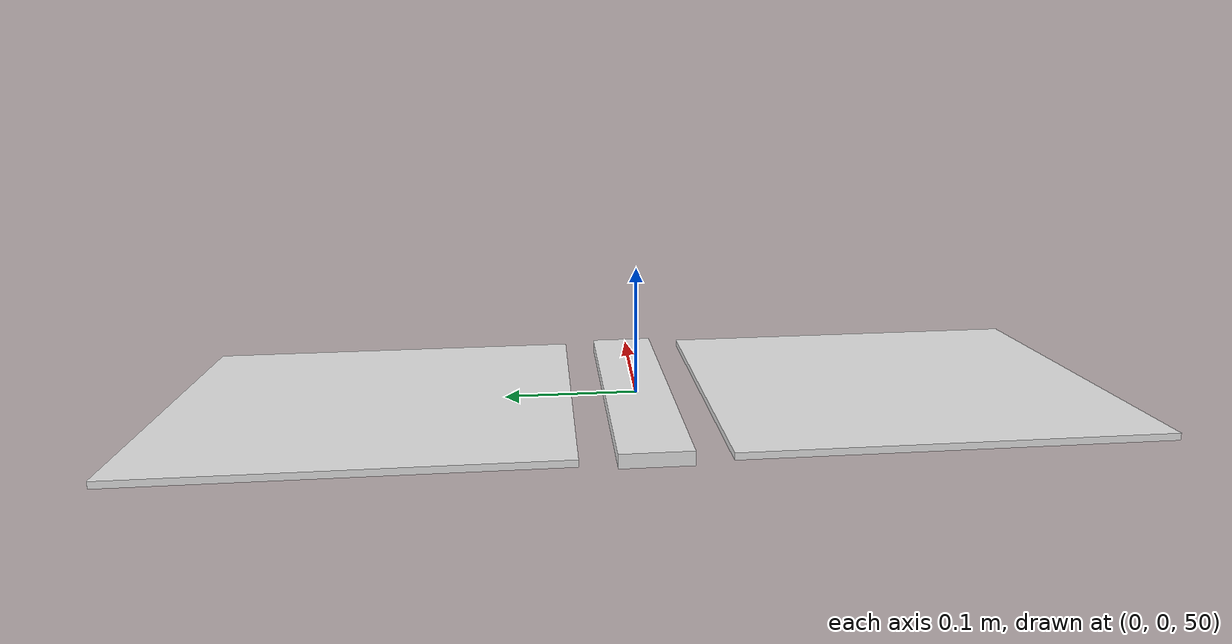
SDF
<?xml version="1.0" ?>
<sdf version="1.6">
  <model name="paper_glider">
    <pose>0 0 50 0 0.15 0</pose> <!-- Starting position with slight downward pitch (0.15 rad) -->

    <link name="fuselage">
      <pose>0 0 0 0 0 0</pose>
      <inertial>
        <mass>0.05</mass> <!-- Much lighter, like paper -->
        <inertia>
          <ixx>0.001</ixx>
          <ixy>0</ixy>
          <ixz>0</ixz>
          <iyy>0.005</iyy>
          <iyz>0</iyz>
          <izz>0.005</izz>
        </inertia>
      </inertial>

      <collision name="collision">
        <geometry>
          <box>
            <size>0.3 0.05 0.01</size> <!-- Thinner like folded paper -->
          </box>
        </geometry>
      </collision>

      <visual name="visual">
        <geometry>
          <box>
            <size>0.3 0.05 0.01</size>
          </box>
        </geometry>
        <material>
          <ambient>0.9 0.9 0.9 1</ambient>
          <diffuse>0.9 0.9 0.9 1</diffuse>
          <specular>0.1 0.1 0.1 1</specular>
        </material>
      </visual>
    </link>

    <link name="left_wing">
      <pose>0 0.2 0 0 0 0</pose> <!-- Slight dihedral angle (0.1 rad) -->
      <inertial>
        <mass>0.02</mass> <!-- Very light -->
        <inertia>
          <ixx>0.0001</ixx>
          <ixy>0</ixy>
          <ixz>0</ixz>
          <iyy>0.001</iyy>
          <iyz>0</iyz>
          <izz>0.001</izz>
        </inertia>
      </inertial>

      <collision name="collision">
        <geometry>
          <box>
            <size>0.3 0.3 0.005</size> <!-- Thin like paper -->
          </box>
        </geometry>
      </collision>

      <visual name="visual">
        <geometry>
          <box>
            <size>0.3 0.3 0.005</size>
          </box>
        </geometry>
        <material>
          <ambient>0.9 0.9 0.9 1</ambient>
          <diffuse>0.9 0.9 0.9 1</diffuse>
          <specular>0.1 0.1 0.1 1</specular>
        </material>
      </visual>
    </link>

    <link name="right_wing">
      <pose>0 -0.2 0 0 0 0</pose> <!-- Slight dihedral angle (0.1 rad) -->
      <inertial>
        <mass>0.02</mass> <!-- Very light -->
        <inertia>
          <ixx>0.0001</ixx>
          <ixy>0</ixy>
          <ixz>0</ixz>
          <iyy>0.001</iyy>
          <iyz>0</iyz>
          <izz>0.001</izz>
        </inertia>
      </inertial>

      <collision name="collision">
        <geometry>
          <box>
            <size>0.3 0.3 0.005</size> <!-- Thin like paper -->
          </box>
        </geometry>
      </collision>

      <visual name="visual">
        <geometry>
          <box>
            <size>0.3 0.3 0.005</size>
          </box>
        </geometry>
        <material>
          <ambient>0.9 0.9 0.9 1</ambient>
          <diffuse>0.9 0.9 0.9 1</diffuse>
          <specular>0.1 0.1 0.1 1</specular>
        </material>
      </visual>
    </link>

    <!-- Fixed joints connecting wings to fuselage -->
    <joint name="left_wing_joint" type="fixed">
      <parent>fuselage</parent>
      <child>left_wing</child>
    </joint>

    <joint name="right_wing_joint" type="fixed">
      <parent>fuselage</parent>
      <child>right_wing</child>
    </joint>

    <!-- LiftDrag Plugin for Left Wing - Using Gazebo Ignition plugin format -->
    <plugin
      filename="gz-sim-lift-drag-system"
      name="gz::sim::systems::LiftDrag">
      <link_name>left_wing</link_name>
      <air_density>1.2041</air_density>
      <area>0.09</area>
      <forward>1 0 0</forward>
      <upward>0 0 1</upward>
      <cp>0 0 0</cp>
      <!-- Lift and drag coefficients for paper airfoil -->
      <a0>0.0</a0>
      <cla>3.0</cla> <!-- Slightly less lift than before -->
      <cda>0.08</cda> <!-- Slightly less drag -->
      <cma>0.0</cma>
      <alpha_stall>0.3</alpha_stall>
      <cla_stall>-0.2</cla_stall>
      <cda_stall>1.5</cda_stall>
      <cma_stall>0.0</cma_stall>
    </plugin>

    <!-- LiftDrag Plugin for Right Wing - Using Gazebo Ignition plugin format -->
    <plugin
      filename="gz-sim-lift-drag-system"
      name="gz::sim::systems::LiftDrag">
      <link_name>right_wing</link_name>
      <air_density>1.2041</air_density>
      <area>0.09</area>
      <forward>1 0 0</forward>
      <upward>0 0 1</upward>
      <cp>0 0 0</cp>
      <!-- Same lift and drag coefficients as left wing -->
      <a0>0.0</a0>
      <cla>3.0</cla>
      <cda>0.08</cda>
      <cma>0.0</cma>
      <alpha_stall>0.3</alpha_stall>
      <cla_stall>-0.2</cla_stall>
      <cda_stall>1.5</cda_stall>
      <cma_stall>0.0</cma_stall>
    </plugin>
  </model>
</sdf>
